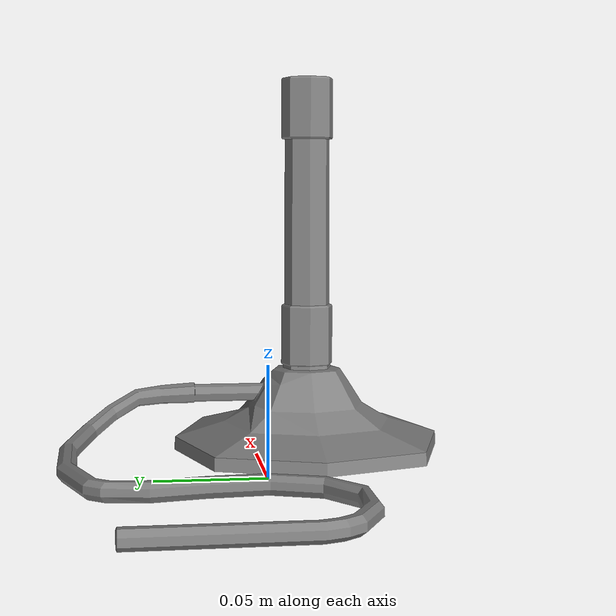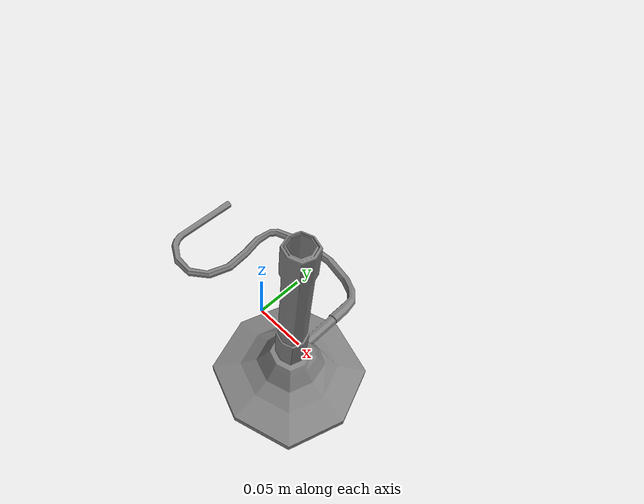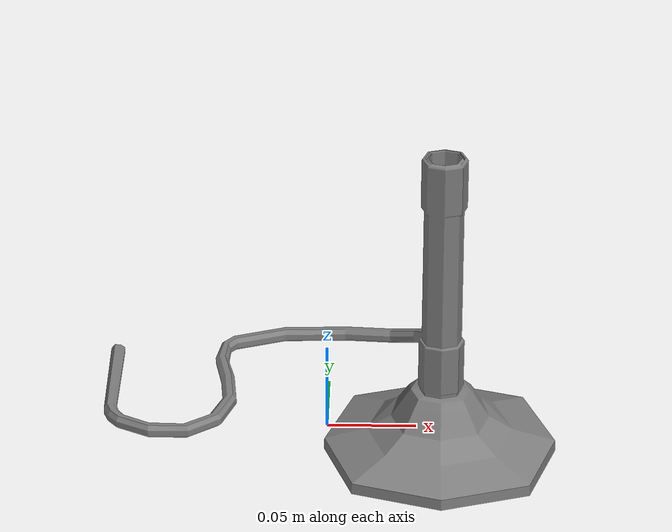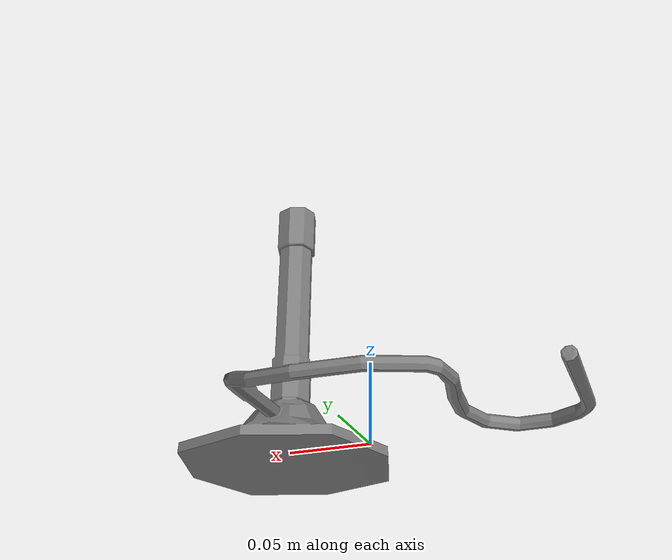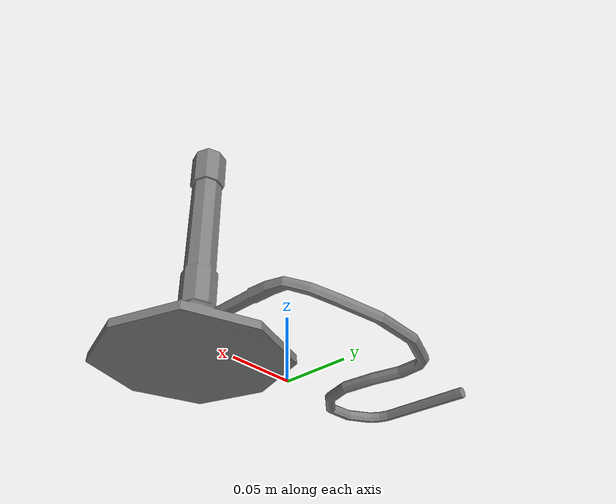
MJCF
<?xml version="1.0" ?>
<mujoco model="214242c1de024978a9db5a7c032b9845">
  <asset>
    <material name="lambert1" specular="0.4000000000000001" shininess="0.001" rgba="0.50196078 0.50196078 0.50196078 1.0"/>
    <mesh file="214242c1de024978a9db5a7c032b9845/214242c1de024978a9db5a7c032b9845.obj" scale="1.146694090492893 1.146694090492893 1.146694090492893"/>
    <mesh file="214242c1de024978a9db5a7c032b9845/214242c1de024978a9db5a7c032b9845_collision_0.obj" scale="1.146694090492893 1.146694090492893 1.146694090492893"/>
    <mesh file="214242c1de024978a9db5a7c032b9845/214242c1de024978a9db5a7c032b9845_collision_1.obj" scale="1.146694090492893 1.146694090492893 1.146694090492893"/>
    <mesh file="214242c1de024978a9db5a7c032b9845/214242c1de024978a9db5a7c032b9845_collision_2.obj" scale="1.146694090492893 1.146694090492893 1.146694090492893"/>
    <mesh file="214242c1de024978a9db5a7c032b9845/214242c1de024978a9db5a7c032b9845_collision_3.obj" scale="1.146694090492893 1.146694090492893 1.146694090492893"/>
    <mesh file="214242c1de024978a9db5a7c032b9845/214242c1de024978a9db5a7c032b9845_collision_4.obj" scale="1.146694090492893 1.146694090492893 1.146694090492893"/>
    <mesh file="214242c1de024978a9db5a7c032b9845/214242c1de024978a9db5a7c032b9845_collision_5.obj" scale="1.146694090492893 1.146694090492893 1.146694090492893"/>
    <mesh file="214242c1de024978a9db5a7c032b9845/214242c1de024978a9db5a7c032b9845_collision_6.obj" scale="1.146694090492893 1.146694090492893 1.146694090492893"/>
    <mesh file="214242c1de024978a9db5a7c032b9845/214242c1de024978a9db5a7c032b9845_collision_7.obj" scale="1.146694090492893 1.146694090492893 1.146694090492893"/>
    <mesh file="214242c1de024978a9db5a7c032b9845/214242c1de024978a9db5a7c032b9845_collision_8.obj" scale="1.146694090492893 1.146694090492893 1.146694090492893"/>
    <mesh file="214242c1de024978a9db5a7c032b9845/214242c1de024978a9db5a7c032b9845_collision_9.obj" scale="1.146694090492893 1.146694090492893 1.146694090492893"/>
    <mesh file="214242c1de024978a9db5a7c032b9845/214242c1de024978a9db5a7c032b9845_collision_10.obj" scale="1.146694090492893 1.146694090492893 1.146694090492893"/>
    <mesh file="214242c1de024978a9db5a7c032b9845/214242c1de024978a9db5a7c032b9845_collision_11.obj" scale="1.146694090492893 1.146694090492893 1.146694090492893"/>
    <mesh file="214242c1de024978a9db5a7c032b9845/214242c1de024978a9db5a7c032b9845_collision_12.obj" scale="1.146694090492893 1.146694090492893 1.146694090492893"/>
    <mesh file="214242c1de024978a9db5a7c032b9845/214242c1de024978a9db5a7c032b9845_collision_13.obj" scale="1.146694090492893 1.146694090492893 1.146694090492893"/>
    <mesh file="214242c1de024978a9db5a7c032b9845/214242c1de024978a9db5a7c032b9845_collision_14.obj" scale="1.146694090492893 1.146694090492893 1.146694090492893"/>
    <mesh file="214242c1de024978a9db5a7c032b9845/214242c1de024978a9db5a7c032b9845_collision_15.obj" scale="1.146694090492893 1.146694090492893 1.146694090492893"/>
    <mesh file="214242c1de024978a9db5a7c032b9845/214242c1de024978a9db5a7c032b9845_collision_16.obj" scale="1.146694090492893 1.146694090492893 1.146694090492893"/>
  </asset>
  <worldbody>
    <body name="214242c1de024978a9db5a7c032b9845">
      <inertial pos="0 0 0.0900" mass="0.02" diaginertia="0.000109 0.000163 0.000164"/>
      <geom material="lambert1" mesh="214242c1de024978a9db5a7c032b9845" class="visual"/>
      <geom mesh="214242c1de024978a9db5a7c032b9845_collision_0" rgba="0.48215229036610163 0.09526469685219263 0.8171604176230759 1" class="collision"/>
      <geom mesh="214242c1de024978a9db5a7c032b9845_collision_1" rgba="0.3973495854775164 0.1901960742671378 0.768051933418594 1" class="collision"/>
      <geom mesh="214242c1de024978a9db5a7c032b9845_collision_2" rgba="0.3386186209688201 0.3933652844390778 0.7735811994720474 1" class="collision"/>
      <geom mesh="214242c1de024978a9db5a7c032b9845_collision_3" rgba="0.5375941746894414 0.5260824931381386 0.01867279021734558 1" class="collision"/>
      <geom mesh="214242c1de024978a9db5a7c032b9845_collision_4" rgba="0.5634787651848604 0.8207661777117159 0.335524775172499 1" class="collision"/>
      <geom mesh="214242c1de024978a9db5a7c032b9845_collision_5" rgba="0.38758508870472375 0.19482953677200854 0.5870750422258487 1" class="collision"/>
      <geom mesh="214242c1de024978a9db5a7c032b9845_collision_6" rgba="0.9540622982322624 0.5150867226805605 0.15192158703569836 1" class="collision"/>
      <geom mesh="214242c1de024978a9db5a7c032b9845_collision_7" rgba="0.8235753405329732 0.7567283323864405 0.29446216769364 1" class="collision"/>
      <geom mesh="214242c1de024978a9db5a7c032b9845_collision_8" rgba="0.342805625916492 0.08956410540888082 0.45479348083318116 1" class="collision"/>
      <geom mesh="214242c1de024978a9db5a7c032b9845_collision_9" rgba="0.8587941525287066 0.15208146657545352 0.17443625417426534 1" class="collision"/>
      <geom mesh="214242c1de024978a9db5a7c032b9845_collision_10" rgba="0.933632120655781 0.2958204862936994 0.6213733224729353 1" class="collision"/>
      <geom mesh="214242c1de024978a9db5a7c032b9845_collision_11" rgba="0.8162665472481669 0.20207437396206607 0.9969637504922171 1" class="collision"/>
      <geom mesh="214242c1de024978a9db5a7c032b9845_collision_12" rgba="0.6509874360102247 0.7294695056764924 0.05577821653131021 1" class="collision"/>
      <geom mesh="214242c1de024978a9db5a7c032b9845_collision_13" rgba="0.018313413490116837 0.277248073875761 0.8380925254925636 1" class="collision"/>
      <geom mesh="214242c1de024978a9db5a7c032b9845_collision_14" rgba="0.6272743277517203 0.20538640110292472 0.05209890040026499 1" class="collision"/>
      <geom mesh="214242c1de024978a9db5a7c032b9845_collision_15" rgba="0.8273647784319283 0.659472933732338 0.23456978453112998 1" class="collision"/>
      <geom mesh="214242c1de024978a9db5a7c032b9845_collision_16" rgba="0.4617745991418769 0.01741696617854016 0.47659072890401266 1" class="collision"/>
      <site class="grasppoint" pos="0 0 0.1440"/>
      <site class="grasppoint" pos="0 0 0.1575"/>
      <site class="grasppoint" pos="0 0 0.1710"/>
    </body>
  </worldbody>
  <compiler boundmass="0.015" boundinertia="1e-03" angle="radian"/>
  <default>
    <default class="visual">
      <geom group="2" type="mesh" contype="0" conaffinity="0" density="50"/>
    </default>
    <default class="collision">
      <geom group="3" type="mesh" density="50" friction="1.5 0.1 0.1" solimp="0.9 0.95 0.001" solref="0.02 1"/>
    </default>
    <default class="grasppoint">
      <site type="sphere" size="0.005" group="4" rgba="0 0 1 1"/>
    </default>
  </default>
</mujoco>
